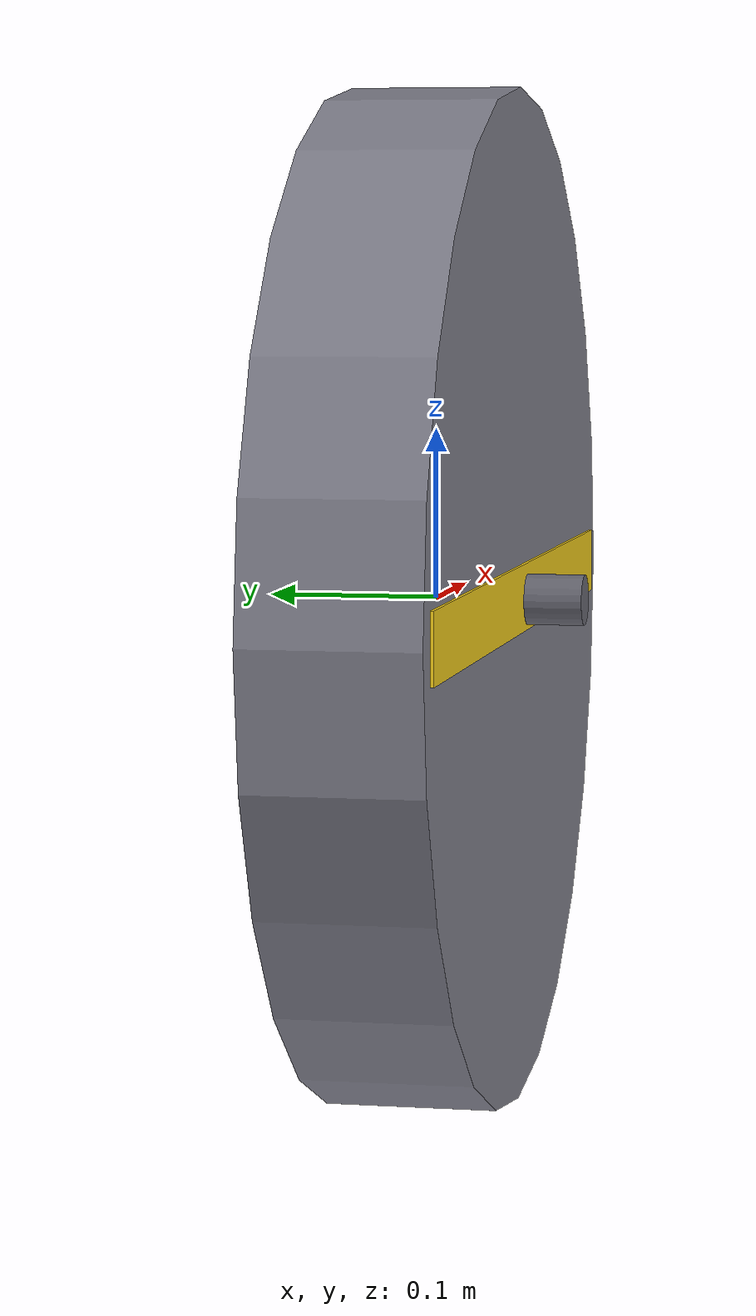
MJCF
<mujoco model="WheelVelocity">

  <compiler angle="radian"/>
  <default>
    <joint type="hinge" damping="0"/>
  </default>

  <worldbody>
    <!-- 静态轮毂：两段灰色短轴（无关节 → spawn 后固定不动），轴向沿 y，
         夹住轮盘两侧但不穿轮心 -->
    <body name="mount">
      <geom name="axle_left" type="cylinder" size="0.015 0.017" pos="0 0.072 0" euler="1.5708 0 0" rgba="0.40 0.40 0.44 1"/>
      <geom name="axle_right" type="cylinder" size="0.015 0.017" pos="0 -0.072 0" euler="1.5708 0 0" rgba="0.40 0.40 0.44 1"/>

      <!-- 轮体：绕 y 轴自旋；圆盘轴向经欧拉旋到 y（MuJoCo 圆柱默认沿 z） -->
      <body name="wheel">
        <joint name="spin" axis="0 1 0"/>
        <!-- 轮盘：深灰，质量 2 kg -->
        <geom name="disc" type="cylinder" size="0.3 0.05" euler="1.5708 0 0" mass="2" rgba="0.50 0.50 0.55 1"/>
        <!-- 辐条：黄色横杆（mass=0），略凸出轮面使旋转可见 -->
        <geom name="spoke" type="box" size="0.28 0.052 0.02" pos="0 0 0" mass="0" rgba="0.95 0.80 0.10 1"/>
      </body>
    </body>
  </worldbody>

  <actuator>
    <velocity name="spin_servo" joint="spin" kv="0.1" ctrlrange="-10 10"/>
  </actuator>
</mujoco>
